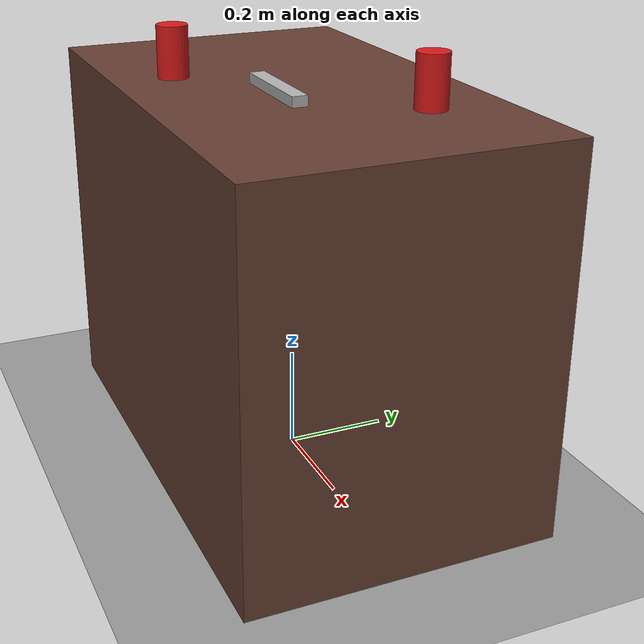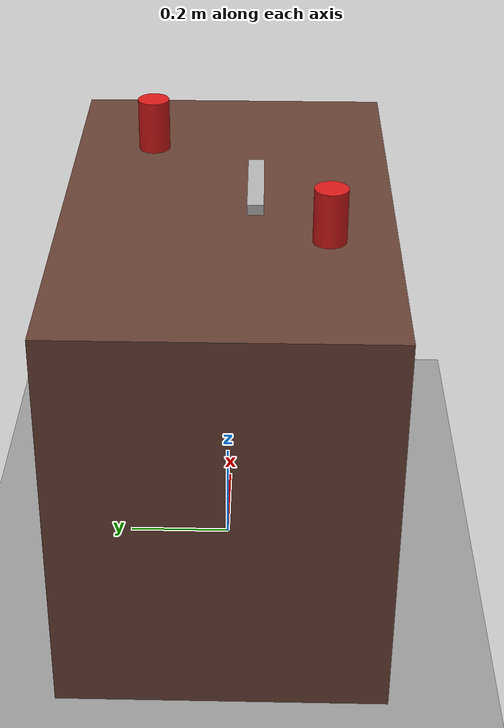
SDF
<?xml version="1.0"?>
<sdf version="1.6">
  <world name="default">
    <physics type="ode">
      <real_time_factor>1.0</real_time_factor>
      <max_step_size>0.001</max_step_size>
    </physics>

    <light name="sun" type="directional">
      <pose>0 0 10 0 0 0</pose>
      <cast_shadows>true</cast_shadows>
      <diffuse>1 1 1 1</diffuse>
      <specular>0.1 0.1 0.1 1</specular>
      <direction>-0.5 0.5 -1</direction>
    </light>

    <model name="ground_plane">
      <static>true</static>
      <link name="link">
        <collision name="collision">
          <geometry>
            <plane>
              <normal>0 0 1</normal>
              <size>10 10</size>
            </plane>
          </geometry>
        </collision>
        <visual name="visual">
          <geometry>
            <plane>
              <normal>0 0 1</normal>
              <size>10 10</size>
            </plane>
          </geometry>
          <material>
            <diffuse>0.6 0.6 0.6 1</diffuse>
            <specular>0.1 0.1 0.1 1</specular>
          </material>
        </visual>
      </link>
    </model>

    <model name="table">
      <static>true</static>
      <pose>0 0 0.375 0 0 0</pose>
      <link name="link">
        <collision name="collision">
          <geometry>
            <box>
              <size>1.0 0.6 0.75</size>
            </box>
          </geometry>
        </collision>
        <visual name="visual">
          <geometry>
            <box>
              <size>1.0 0.6 0.75</size>
            </box>
          </geometry>
          <material>
            <diffuse>0.4 0.25 0.2 1</diffuse>
            <specular>0.05 0.05 0.05 1</specular>
          </material>
        </visual>
      </link>
    </model>

    <model name="cup_red_1">
      <pose>0.25 0.15 0.80 0 0 0</pose>
      <link name="link">
        <inertial>
          <mass>0.2</mass>
          <inertia>
            <ixx>0.0002</ixx>
            <iyy>0.0002</iyy>
            <izz>0.00018</izz>
          </inertia>
        </inertial>
        <collision name="collision">
          <geometry>
            <cylinder>
              <radius>0.03</radius>
              <length>0.1</length>
            </cylinder>
          </geometry>
        </collision>
        <visual name="visual">
          <geometry>
            <cylinder>
              <radius>0.03</radius>
              <length>0.1</length>
            </cylinder>
          </geometry>
          <material>
            <diffuse>0.85 0.1 0.1 1</diffuse>
            <specular>0.2 0.2 0.2 1</specular>
          </material>
        </visual>
      </link>
    </model>

    <model name="cup_red_2">
      <pose>-0.15 -0.18 0.80 0 0 0</pose>
      <link name="link">
        <inertial>
          <mass>0.2</mass>
          <inertia>
            <ixx>0.0002</ixx>
            <iyy>0.0002</iyy>
            <izz>0.00018</izz>
          </inertia>
        </inertial>
        <collision name="collision">
          <geometry>
            <cylinder>
              <radius>0.03</radius>
              <length>0.1</length>
            </cylinder>
          </geometry>
        </collision>
        <visual name="visual">
          <geometry>
            <cylinder>
              <radius>0.03</radius>
              <length>0.1</length>
            </cylinder>
          </geometry>
          <material>
            <diffuse>0.85 0.1 0.1 1</diffuse>
            <specular>0.2 0.2 0.2 1</specular>
          </material>
        </visual>
      </link>
    </model>

    <model name="knife_1">
      <pose>0.05 -0.05 0.76 0 0 0</pose>
      <link name="link">
        <inertial>
          <mass>0.1</mass>
          <inertia>
            <ixx>0.00005</ixx>
            <iyy>0.0002</iyy>
            <izz>0.0002</izz>
          </inertia>
        </inertial>
        <collision name="collision">
          <geometry>
            <box>
              <size>0.2 0.03 0.02</size>
            </box>
          </geometry>
        </collision>
        <visual name="visual">
          <geometry>
            <box>
              <size>0.2 0.03 0.02</size>
            </box>
          </geometry>
          <material>
            <diffuse>0.7 0.7 0.7 1</diffuse>
            <specular>0.3 0.3 0.3 1</specular>
          </material>
        </visual>
      </link>
    </model>
  </world>
</sdf>
